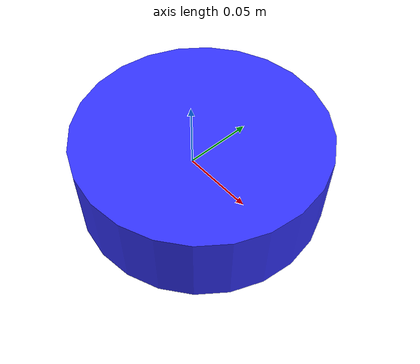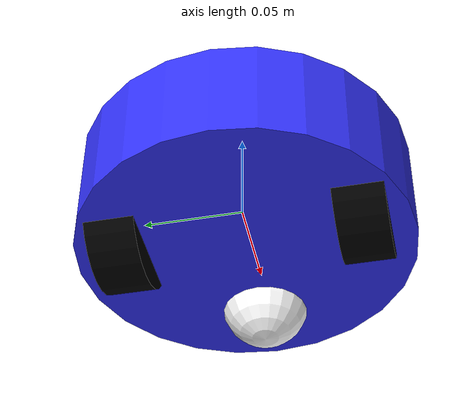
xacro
<?xml version="1.0"?>
<robot xmlns:xacro="http://www.ros.org/wiki/xacro">

    <xacro:include filename="inertial_macros.xacro" />

    <material name="white">
        <color rgba="1 1 1 1"/>
    </material>

    <material name="blue">
        <color rgba="0.2 0.2 1 1"/>
    </material>

    <material name="black">
        <color rgba="0 0 0 1"/>
    </material>

    <!-- Base Link -->

    <link name="base_link">

    </link>

    <!-- Chassis Link -->

    <joint name="chassis_joint" type="fixed">
        <parent link="base_link"/>
        <child link="chassis"/>
        <origin xyz="-0.075 0 0"/>
    </joint>

    <link name="chassis">
        <visual>
        <origin xyz="0.085 0 0.01"/>
            <geometry>
                <cylinder radius="0.085" length="0.055"/>
            </geometry>
            <material name="blue"/>
        </visual>

        <collision>
        <origin xyz="0.085 0 0.01"/>
            <geometry>
                <cylinder radius="0.085" length="0.055"/>
            </geometry>
        </collision>

        <xacro:inertial_cylinder mass="0.5" radius="0.085" length="0.01">
            <origin xyz="0.085 0 0.1" rpy="0 0 0"/>
        </xacro:inertial_cylinder>
    </link>

    <gazebo reference="chassis">
        <material>Gazebo/Blue</material>
    </gazebo>

    <!-- Left Wheel Link -->

    <joint name="left_wheel_joint" type="continuous">
        <parent link="base_link"/>
        <child link="left_wheel"/>
        <origin xyz="0 0.06 0" rpy="-${pi/2} 0 0"/>
        <axis xyz="0 0 1"/>
    </joint>

    <link name="left_wheel">
        <visual>
            <geometry>
                <cylinder radius="0.0325" length="0.025"/>
            </geometry>
        <material name="black"/>
        </visual>

        <collision>
            <geometry>
                <cylinder radius="0.0325" length="0.025"/>
            </geometry>
        </collision>

        <xacro:inertial_cylinder mass="0.1" radius="0.0325" length="0.025">
            <origin xyz="0 0 0" rpy="0 0 0"/>
        </xacro:inertial_cylinder>
    </link>

    <gazebo reference="left_wheel">
        <material>Gazebo/Black</material>
    </gazebo>

        <!-- Right Wheel Link -->

    <joint name="right_wheel_joint" type="continuous">
        <parent link="base_link"/>
        <child link="right_wheel"/>
        <origin xyz="0 -0.06 0" rpy="${pi/2} 0 0"/>
        <axis xyz="0 0 -1"/>
    </joint>

    <link name="right_wheel">
        <visual>
            <geometry>
                <cylinder radius="0.0325" length="0.025"/>
            </geometry>
        <material name="black"/>
        </visual>

        <collision>
            <geometry>
                <cylinder radius="0.0325" length="0.025"/>
            </geometry>
        </collision>

        <xacro:inertial_cylinder mass="0.1" radius="0.0325" length="0.025">
            <origin xyz="0 0 0" rpy="0 0 0"/>
        </xacro:inertial_cylinder>
    </link>

    <gazebo reference="right_wheel">
        <material>Gazebo/Black</material>
    </gazebo>

    <!-- Caster Wheel Link -->

    <joint name="caster_wheel_joint" type="fixed">
        <parent link="base_link"/>
        <child link="caster_wheel"/>
        <origin xyz="0.06 0 -0.0125"/>
    </joint>

    <link name="caster_wheel">
        <visual>
            <geometry>
                <sphere radius="0.0225"/>
            </geometry>
            <material name="white"/>
        </visual>

        <collision>
            <geometry>
                <sphere radius="0.0225"/>
            </geometry>
        </collision>

        <xacro:inertial_sphere mass="0.1" radius="0.0225">
            <origin xyz="0 0 0" rpy="0 0 0"/>
        </xacro:inertial_sphere>
    </link>

    <gazebo reference="caster_wheel">
        <material>Gazebo/White</material>
        <mu1 value="0.001"/>
        <mu2 value="0.001"/>
    </gazebo>

</robot>
